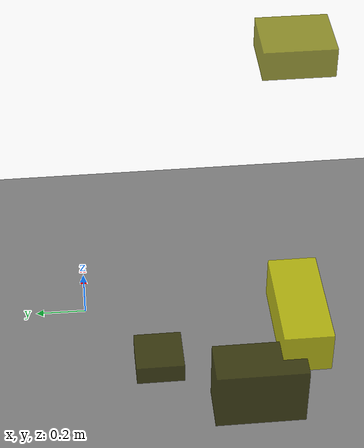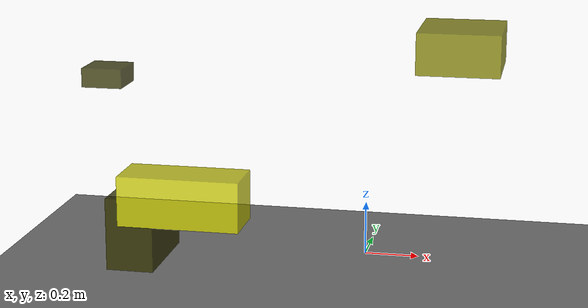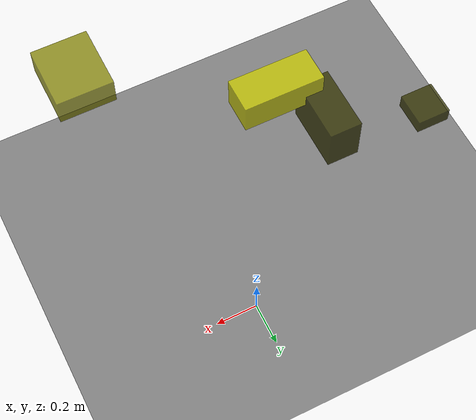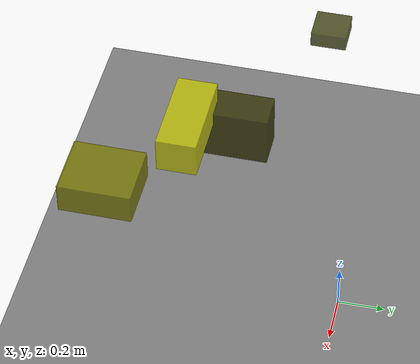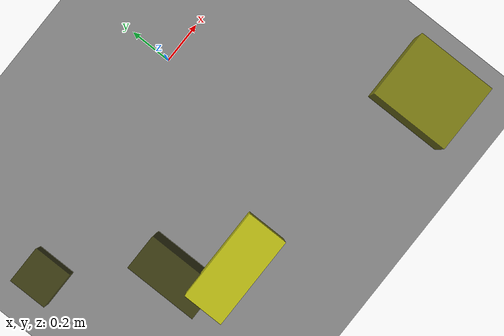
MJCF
<?xml version="1.0"?>
<mujoco model="obstacle_scene">
  <compiler angle="radian" coordinate="local"/>
  <option timestep="0.001" gravity="0 0 -9.81"/>

  <asset>
    <material name="obstacle_mat" rgba="0.8 0.8 0.0 0.8"/>
    <material name="ground_mat" rgba="0.5 0.5 0.5 1"/>
  </asset>

  <worldbody>
    <!-- Ground plane -->
    <geom name="ground" type="plane" size="3 3 0.1" material="ground_mat"/>

    <!-- Obstacles -->
    <body name="obstacle_0" pos="-0.929830 -0.231813 0.700411">
      <geom name="obs_0" type="box" size="0.074738 0.077062 0.034836" rgba="0.2 0.2 0.0 0.8"/>
    </body>
    <body name="obstacle_1" pos="0.410156 -0.880819 0.966349">
      <geom name="obs_1" type="box" size="0.124746 0.144501 0.063159" rgba="0.5 0.5 0.0 0.8"/>
    </body>
    <body name="obstacle_2" pos="-0.495865 -0.781220 0.411739">
      <geom name="obs_2" type="box" size="0.203761 0.089492 0.083858" rgba="0.8 0.8 0.0 0.8"/>
    </body>
    <body name="obstacle_3" pos="-0.690259 -0.612403 0.266616">
      <geom name="obs_3" type="box" size="0.080991 0.165917 0.124152" rgba="0.2 0.2 0.0 0.8"/>
    </body>
  </worldbody>
</mujoco>
